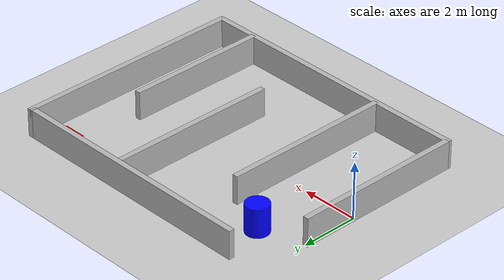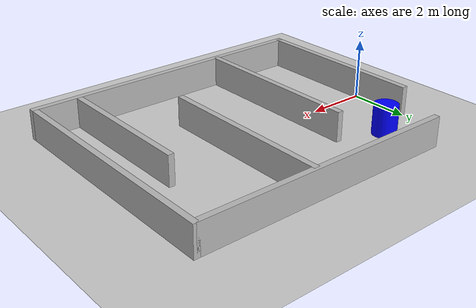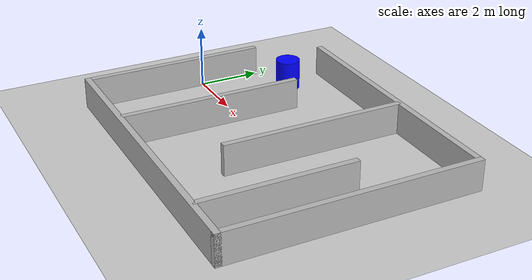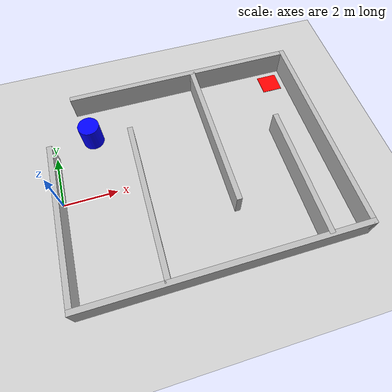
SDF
<?xml version="1.0"?>
<sdf version="1.6">
  <world name="me_cung_phuc_tap_huy">
    <include><uri>model://ground_plane</uri></include>
    <include><uri>model://sun</uri></include>

    <!-- ===== HỆ THỐNG TƯỜNG MÊ CUNG: ĐÃ FIX LỖI HIỂN THỊ ===== -->
    <model name="maze_complex">
      <static>true</static>
      <link name="walls">

        <!-- 1. Tường bao ngoài (Mở cửa ở góc trên bên trái) -->
        <visual name="w_west"><pose>0 -1 0.5 0 0 0</pose><geometry><box><size>0.2 6 1</size></box></geometry></visual>
        <collision name="c_west"><pose>0 -1 0.5 0 0 0</pose><geometry><box><size>0.2 6 1</size></box></geometry></collision>

        <visual name="w_north"><pose>5.5 4 0.5 0 0 0</pose><geometry><box><size>9 0.2 1</size></box></geometry></visual>
        <collision name="c_north"><pose>5.5 4 0.5 0 0 0</pose><geometry><box><size>9 0.2 1</size></box></geometry></collision>

        <visual name="w_south"><pose>5 -4 0.5 0 0 0</pose><geometry><box><size>10.2 0.2 1</size></box></geometry></visual>
        <collision name="c_south"><pose>5 -4 0.5 0 0 0</pose><geometry><box><size>10.2 0.2 1</size></box></geometry></collision>

        <visual name="w_east"><pose>10 0 0.5 0 0 0</pose><geometry><box><size>0.2 8.2 1</size></box></geometry></visual>
        <collision name="c_east"><pose>10 0 0.5 0 0 0</pose><geometry><box><size>0.2 8.2 1</size></box></geometry></collision>

        <!-- 2. Vách ngăn tạo đường Zic-zac (Đã tính toán kỹ để không chặn đường) -->
        <!-- Vách v1: Chặn dưới, hở trên cho robot đi vào từ cửa -->
        <visual name="v1"><pose>3 -1 0.5 0 0 0</pose><geometry><box><size>0.2 6 1</size></box></geometry></visual>
        <collision name="c_v1"><pose>3 -1 0.5 0 0 0</pose><geometry><box><size>0.2 6 1</size></box></geometry></collision>

        <!-- Vách v2: Chặn trên, hở dưới để robot đi vòng xuống -->
        <visual name="v2"><pose>6 1 0.5 0 0 0</pose><geometry><box><size>0.2 6 1</size></box></geometry></visual>
        <collision name="c_v2"><pose>6 1 0.5 0 0 0</pose><geometry><box><size>0.2 6 1</size></box></geometry></collision>

        <!-- Vách v3: Tạo lối vào khu vực đích -->
        <visual name="v3"><pose>8.5 -1.5 0.5 0 0 0</pose><geometry><box><size>0.2 5 1</size></box></geometry></visual>
        <collision name="c_v3"><pose>8.5 -1.5 0.5 0 0 0</pose><geometry><box><size>0.2 5 1</size></box></geometry></collision>
      </link>
    </model>

    <!-- ===== VẬT CẢN PHỤ ===== -->
    <model name="big_cylinder">
      <static>true</static>
      <pose>1.5 2.5 0.5 0 0 0</pose>
      <link name="link">
        <collision name="collision"><geometry><cylinder><radius>0.4</radius><length>1.0</length></cylinder></geometry></collision>
        <visual name="visual"><geometry><cylinder><radius>0.4</radius><length>1.0</length></cylinder></geometry><material><ambient>0 0 1 1</ambient></material></visual>
      </link>
    </model>

    <!-- Đích đến (Ô đỏ) -->
    <model name="goal">
      <static>true</static>
      <pose>9.3 3.3 0.01 0 0 0</pose>
      <link name="link">
        <visual name="visual">
          <geometry><box><size>0.8 0.8 0.02</size></box></geometry>
          <material><ambient>1 0 0 1</ambient></material>
        </visual>
      </link>
    </model>

  </world>
</sdf>
